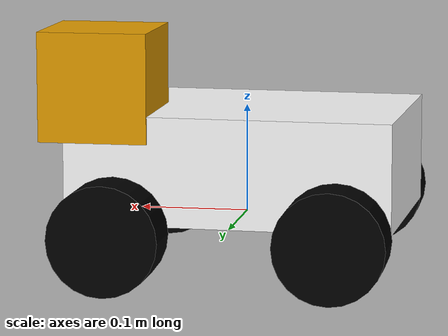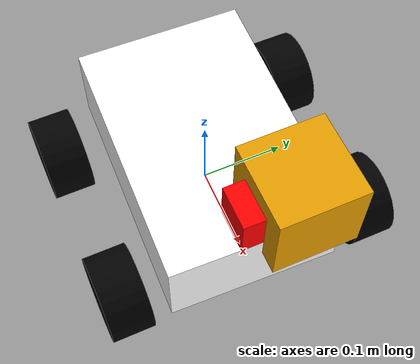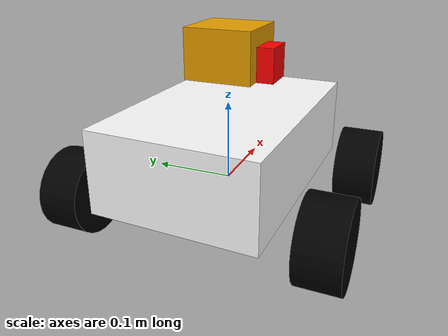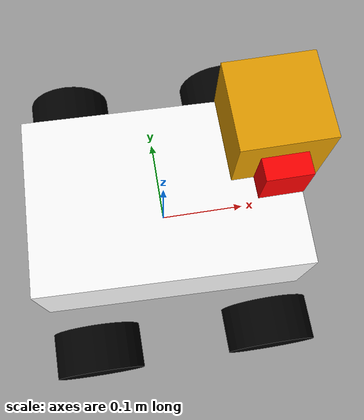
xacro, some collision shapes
<?xml version="1.0"?>

<robot xmlns:xacro="http://www.ros.org/wiki/xacro"
 	xmlns:sensor="http://playerstage.sourceforge.net/gazebo/xmlschema/#sensor"
    	xmlns:controller="http://playerstage.sourceforge.net/gazebo/xmlschema/#controller"
    	xmlns:interface="http://playerstage.sourceforge.net/gazebo/xmlschema/#interface"
	name="robot">

	<xacro:property name="length_wheel" value="0.05" />
	<xacro:property name="radius_wheel" value="0.05" />
	<xacro:property name="camera_link" value="0.05" />
	<xacro:macro name="default_inertial" params="mass">
               <inertial>
                       <mass value="${mass}" />
                       <inertia ixx="1.0" ixy="0.0" ixz="0.0"
                                iyy="1.0" iyz="0.0"
                                izz="1.0" />
               </inertial>
	</xacro:macro>

	<link name="base_footprint">
   		<visual>
			<geometry>
      				<box size="0.001 0.001 0.001"/>
     			</geometry>
			<origin rpy="0 0 0" xyz="0 0 0"/>
   		</visual>
		<xacro:default_inertial mass="0.0001"/>
 	</link>
 	<xacro:include filename="$(find gazebo_pkg)/urdf/robot.gazebo" />

	<gazebo reference="base_footprint">
		<material>Gazebo/Green</material>
		<turnGravityOff>false</turnGravityOff>
	</gazebo>

	<joint name="base_footprint_joint" type="fixed">
		<origin xyz="0 0 0" />
		<parent link="base_footprint" />
		<child link="base_link" />
	</joint>

	<link name="base_link">
   		<visual>
			<geometry>
      				<box size="0.2 .3 .1"/>
     			</geometry>
			<origin rpy="0 0 1.54" xyz="0 0 0.05"/>
			<material name="white">
				<color rgba="1 1 1 1"/>
			</material>
   		</visual>
		<collision>
			<geometry>
       				<box size="0.2 .3 0.1"/>
			</geometry>
		</collision>
		<xacro:default_inertial mass="10"/>
 	</link>

 	<link name="wheel_1">
   		<visual>
     			<geometry>
       				<cylinder length="${length_wheel}" radius="${radius_wheel}"/>
     			</geometry>
			<origin rpy="0 0 0" xyz="0 0 0"/>
   			<material name="black">
				<color rgba="0 0 0 1"/>
			</material>
		</visual>
		<collision>
			<geometry>
       				<cylinder length="${length_wheel}" radius="${radius_wheel}"/>
			</geometry>
		</collision>
		<xacro:default_inertial mass="1"/>
 	</link>

 	<link name="wheel_2">
   		<visual>
     			<geometry>
       				<cylinder length="${length_wheel}" radius="${radius_wheel}"/>
     			</geometry>
			<origin rpy="0 0 0" xyz="0 0 0"/>
   			<material name="black"/>
   		</visual>
		<collision>
			<geometry>
       				<cylinder length="${length_wheel}" radius="${radius_wheel}"/>
			</geometry>
		</collision>
		<xacro:default_inertial mass="1"/>

 	</link>

 	<link name="wheel_3">
   		<visual>
     			<geometry>
       				<cylinder length="${length_wheel}" radius="${radius_wheel}"/>
     			</geometry>

			<origin rpy="0 0 0" xyz="0 0 0"/>
   			<material name="black"/>
   		</visual>
		<collision>
			<geometry>
       				<cylinder length="${length_wheel}" radius="${radius_wheel}"/>
			</geometry>
		</collision>
		<xacro:default_inertial mass="1"/>
 	</link>

 	<link name="wheel_4">
   		<visual>
     			<geometry>
       				<cylinder length="${length_wheel}" radius="${radius_wheel}"/>
     			</geometry>
			<origin rpy="0 0 0" xyz="0 0 0" />
   			<material name="black"/>
   		</visual>
		<collision>
			<geometry>
       				<cylinder length="${length_wheel}" radius="${radius_wheel}"/>
			</geometry>
		</collision>
		<xacro:default_inertial mass="1"/>

 	</link>

 <joint name="base_to_wheel1" type="continuous">
   <parent link="base_link"/>
   <child link="wheel_1"/>
   <origin rpy="-1.5707 0 0" xyz="0.1 0.15 0"/>
   <axis xyz="0 0 1" />
 </joint>

 <joint name="base_to_wheel2" type="continuous">
   <axis xyz="0 0 1" />
   <anchor xyz="0 0 0" />
   <limit effort="100" velocity="100" />
   <parent link="base_link"/>
   <child link="wheel_2"/>
   <origin rpy="-1.5707 0 0" xyz="-0.1 0.15 0"/>
</joint>

 <joint name="base_to_wheel3" type="continuous">
   <parent link="base_link"/>
   <axis xyz="0 0 1" />
   <child link="wheel_3"/>
   <origin rpy="-1.5707 0 0" xyz="0.1 -0.15 0"/>
 </joint>

 <joint name="base_to_wheel4" type="continuous">
   <parent link="base_link"/>
   <axis xyz="0 0 1" />
   <child link="wheel_4"/>
   <origin rpy="-1.5707 0 0" xyz="-0.1 -0.15 0"/>
 </joint>
  <!-- Camera joint -->
  <joint name="camera_joint" type="fixed">
    <axis xyz="0 1 0" />
    <origin xyz="0.125 0 0.125" rpy="0 0 0"/>
    <parent link="base_link"/>
    <child link="camera_link"/>
  </joint>

  <!-- Camera -->
  <link name="camera_link">
    <collision>
      <origin xyz="0 0 0" rpy="0 0 0"/>
      <geometry>
	<box size="0.05 0.05 0.05"/>
      </geometry>
    </collision>

    <visual>
      <origin xyz="0 0 0" rpy="0 0 0"/>
      <geometry>
	<box size="0.05 0.05 0.05"/>
      </geometry>
      <material name="red">
	<color rgba="1 0 0 1"/>
      </material>
    </visual>

    <inertial>
      <mass value="1e-5" />
      <origin xyz="0 0 0" rpy="0 0 0"/>
      <inertia ixx="1e-6" ixy="0" ixz="0" iyy="1e-6" iyz="0" izz="1e-6" />
    </inertial>
  </link>

   <!-- IMU joint -->
  <joint name="imu_joint" type="fixed">
    <axis xyz="0 1 0" />
    <origin xyz="0.125 0 0.125" rpy="0 0 0"/>
    <parent link="base_link"/>
    <child link="imu_link"/>
  </joint>

  <!-- IMU -->
  <link name="imu_link">
    <collision>
      <origin xyz="0 0 0" rpy="0 0 0"/>
      <geometry>
  <box size="0.05 0.05 0.05"/>
      </geometry>
    </collision>

    <visual>
      <origin xyz="0 0 0" rpy="0 0 0"/>
      <geometry>
  <box size="0.05 0.05 0.05"/>
      </geometry>
      <material name="green">
  <color rgba="0 1 0 1"/>
      </material>
    </visual>

    <inertial>
      <mass value="1e-5" />
      <origin xyz="0 0 0" rpy="0 0 0"/>
      <inertia ixx="1e-6" ixy="0" ixz="0" iyy="1e-6" iyz="0" izz="1e-6" />
    </inertial>
  </link>

  <!-- Hokuyo joint -->
  <joint name="hokuyo_joint" type="fixed">
    <origin xyz="0.125 0.05 0.125" rpy="0 0 0"/>
    <parent link="base_link"/>
    <axis xyz="0 1 0" />
    <child link="hokuyo_link"/>
  </joint>

  <!-- Hokuyo Laser -->
  <link name="hokuyo_link">
    <collision>
      <origin xyz="0 0 0" rpy="0 0 0"/>
      <geometry>
	<box size="0.1 0.1 0.1"/>
      </geometry>
    </collision>

    <visual>
      <origin xyz="0 0 0" rpy="0 0 0"/>
      <geometry>
        <mesh filename="package://gazebo_pkg/meshes/hokuyo.dae"/>
      </geometry>
    </visual>

    <inertial>
      <mass value="1e-5" />
      <origin xyz="0 0 0" rpy="0 0 0"/>
      <inertia ixx="1e-6" ixy="0" ixz="0" iyy="1e-6" iyz="0" izz="1e-6" />
    </inertial>
  </link>

</robot>
